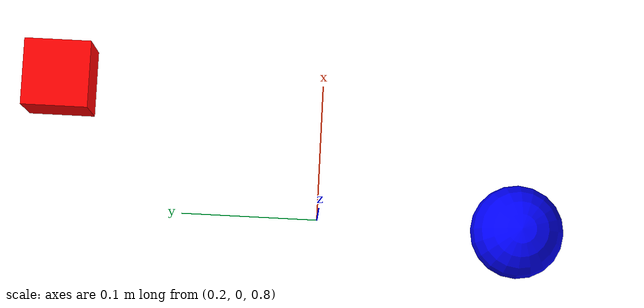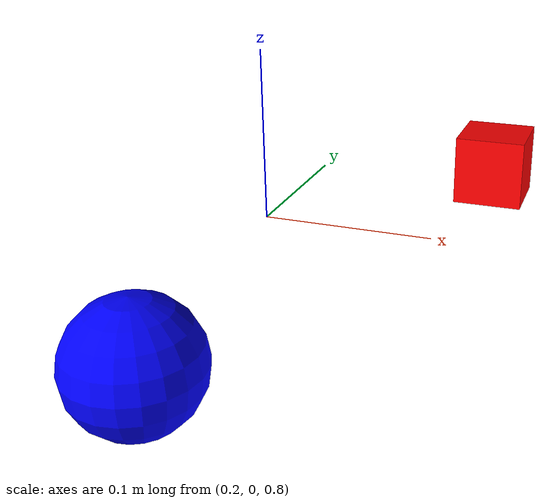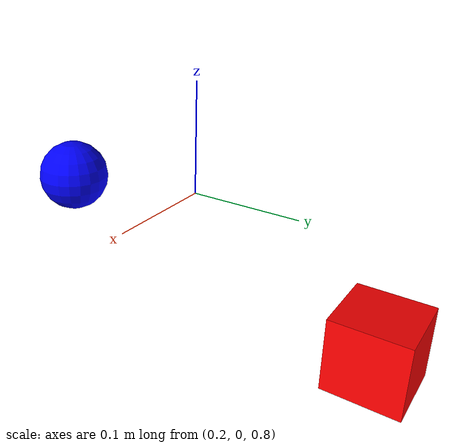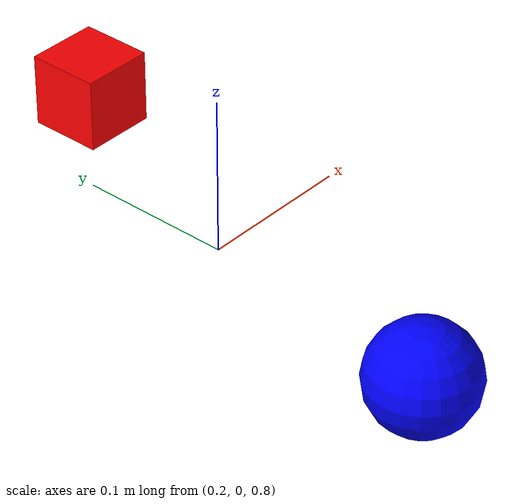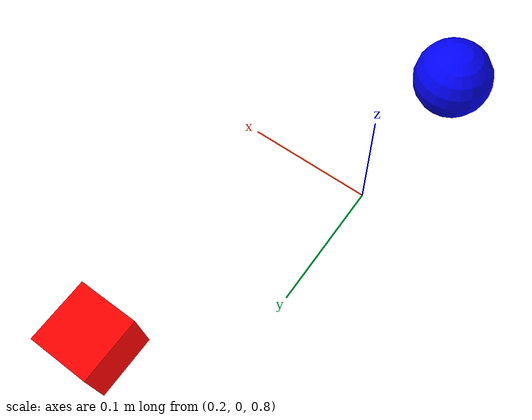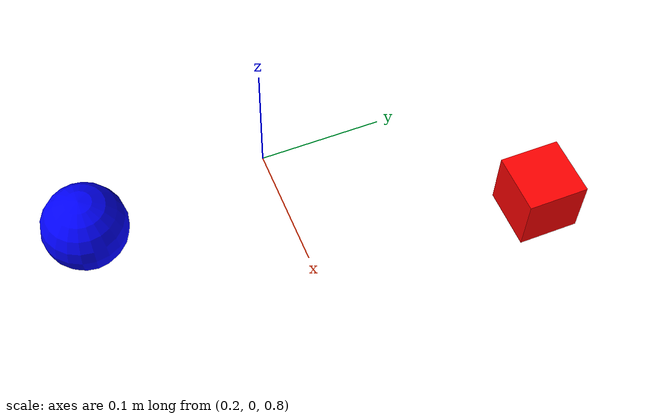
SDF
<?xml version="1.0" ?>
<sdf version="1.9">
  <world name="manipulation_world">

    <!-- Physics -->
    <physics name="1ms" type="ignored">
      <max_step_size>0.001</max_step_size>
      <real_time_factor>1.0</real_time_factor>
    </physics>

    <!-- Plugins -->
    <plugin
      filename="gz-sim-physics-system"
      name="gz::sim::systems::Physics">
    </plugin>
    <plugin
      filename="gz-sim-user-commands-system"
      name="gz::sim::systems::UserCommands">
    </plugin>
    <plugin
      filename="gz-sim-scene-broadcaster-system"
      name="gz::sim::systems::SceneBroadcaster">
    </plugin>
    <plugin
      filename="gz-sim-sensors-system"
      name="gz::sim::systems::Sensors">
      <render_engine>ogre2</render_engine>
    </plugin>
    <plugin
      filename="gz-sim-contact-system"
      name="gz::sim::systems::Contact">
    </plugin>

    <!-- Lighting -->
    <light type="directional" name="sun">
      <cast_shadows>true</cast_shadows>
      <pose>0 0 10 0 0 0</pose>
      <diffuse>0.8 0.8 0.8 1</diffuse>
      <specular>0.2 0.2 0.2 1</specular>
      <attenuation>
        <range>1000</range>
        <constant>0.9</constant>
        <linear>0.01</linear>
        <quadratic>0.001</quadratic>
      </attenuation>
      <direction>-0.5 0.1 -0.9</direction>
    </light>

    <!-- Ambient light -->
    <light type="directional" name="ambient_light">
      <pose>0 0 5 0 0 0</pose>
      <diffuse>0.4 0.4 0.4 1</diffuse>
      <specular>0.1 0.1 0.1 1</specular>
      <direction>0 0 -1</direction>
      <cast_shadows>false</cast_shadows>
    </light>

    <!-- Ground Plane -->
    <model name="ground_plane">
      <static>true</static>
      <link name="link">
        <collision name="collision">
          <geometry>
            <plane>
              <normal>0 0 1</normal>
              <size>100 100</size>
            </plane>
          </geometry>
        </collision>
        <visual name="visual">
          <geometry>
            <plane>
              <normal>0 0 1</normal>
              <size>100 100</size>
            </plane>
          </geometry>
          <material>
            <ambient>0.8 0.8 0.8 1</ambient>
            <diffuse>0.8 0.8 0.8 1</diffuse>
            <specular>0.8 0.8 0.8 1</specular>
          </material>
        </visual>
      </link>
    </model>

    <!-- Sample objects for manipulation testing -->
    <model name="test_cube">
      <pose>0.3 0.2 0.78 0 0 0</pose>
      <link name="cube_link">
        <inertial>
          <mass>0.1</mass>
          <inertia>
            <ixx>0.000167</ixx>
            <iyy>0.000167</iyy>
            <izz>0.000167</izz>
          </inertia>
        </inertial>
        <collision name="collision">
          <geometry>
            <box>
              <size>0.05 0.05 0.05</size>
            </box>
          </geometry>
        </collision>
        <visual name="visual">
          <geometry>
            <box>
              <size>0.05 0.05 0.05</size>
            </box>
          </geometry>
          <material>
            <ambient>1 0 0 1</ambient>
            <diffuse>1 0 0 1</diffuse>
            <specular>0.5 0.5 0.5 1</specular>
          </material>
        </visual>
      </link>
    </model>

    <model name="test_sphere">
      <pose>0.2 -0.15 0.785 0 0 0</pose>
      <link name="sphere_link">
        <inertial>
          <mass>0.08</mass>
          <inertia>
            <ixx>0.00008</ixx>
            <iyy>0.00008</iyy>
            <izz>0.00008</izz>
          </inertia>
        </inertial>
        <collision name="collision">
          <geometry>
            <sphere>
              <radius>0.035</radius>
            </sphere>
          </geometry>
        </collision>
        <visual name="visual">
          <geometry>
            <sphere>
              <radius>0.035</radius>
            </sphere>
          </geometry>
          <material>
            <ambient>0 0 1 1</ambient>
            <diffuse>0 0 1 1</diffuse>
            <specular>0.5 0.5 0.5 1</specular>
          </material>
        </visual>
      </link>
    </model>

  </world>
</sdf>
